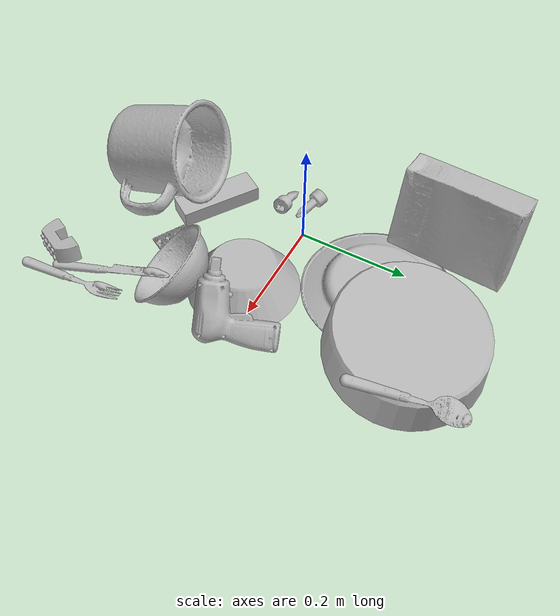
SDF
<sdf version="1.4">
  <world name="default">
    <light name="light1" type="point">
      <pose>0 0 1 0 0 0</pose>
      <diffuse>3 3 3 1</diffuse>
      <specular>3 3 3 1</specular>
    </light>
    <light name="light2" type="point">
      <pose>0 0.5 2 0 0 0</pose>
      <diffuse>1 1 1 1</diffuse>
      <specular>1 1 1 1</specular>
    </light>
    <light name="light3" type="point">
      <pose>0 0.5 2 0 0 0</pose>
      <diffuse>3 3 3 1</diffuse>
      <specular>3 3 3 1</specular>
    </light>
    <scene>
      <ambient>0.7 0.7 0.7</ambient>
    </scene>
    <model name="plate1">
      <link name="link_plate1">
        <collision name="default">
          <geometry>
            <mesh>
              <uri>model://plate/collision_meshes/collision.obj</uri>
              <scale>1.0 1.0 1.0</scale>
            </mesh>
          </geometry>
          <surface>
            <friction>
              <ode>
                <mu>0.5</mu>
                <mu2>0.5</mu2>
              </ode>
            </friction>
          <contact>
        <ode>
            <max_vel>0</max_vel>
            <min_depth>0.0001</min_depth>
            <kp>1e8</kp>
        </ode>
    </contact></surface>
        </collision>
        <visual name="default">
          <geometry>
            <mesh>
              <uri>model://plate/visual_meshes/visual.dae</uri>
              <scale>1.0 1.0 1.0</scale>
            </mesh>
          </geometry>
        </visual>
        <inertial>
          <mass>0.2627958059310913</mass>
          <pose>-0.0006044646725058556 0.00027825895813293755 -0.0010561998933553696 0.0022187866930069794 -0.0032254842153956703 0.4526099982878722</pose>
          <inertia>
            <ixx>0.0012293643</ixx>
            <iyy>0.0012176059</iyy>
            <izz>0.0024044532</izz>
            <ixy>0</ixy>
            <ixz>0</ixz>
            <iyz>0</iyz>
          </inertia>
        </inertial>
      </link>
      <pose>0.05194190517067909 0.16974306106567383 0.01344111654907465 3.1414943299817946 -0.003277990821840223 0.01746045241869001</pose>
    </model>
    <model name="plate2">
      <link name="link_plate2">
        <collision name="default">
          <geometry>
            <mesh>
              <uri>model://pan_tefal/collision_meshes/collision.obj</uri>
              <scale>1.0 1.0 1.0</scale>
            </mesh>
          </geometry>
          <surface>
            <friction>
              <ode>
                <mu>0.5</mu>
                <mu2>0.5</mu2>
              </ode>
            </friction>
          <contact>
        <ode>
            <max_vel>0</max_vel>
            <min_depth>0.0001</min_depth>
            <kp>1e8</kp>
        </ode>
    </contact></surface>
        </collision>
        <visual name="default">
          <geometry>
            <mesh>
              <uri>model://pan_tefal/visual_meshes/visual.dae</uri>
              <scale>1.0 1.0 1.0</scale>
            </mesh>
          </geometry>
        </visual>
        <inertial>
          <mass>1.5012701749801636</mass>
          <pose>-0.00018001999706029892 3.279017983004451e-05 -0.00851493701338768 0.0008190300793188327 -0.0003301349064117064 -0.3318640955526003</pose>
          <inertia>
            <ixx>0.010363197</ixx>
            <iyy>0.010430007</iyy>
            <izz>0.019076647</izz>
            <ixy>0</ixy>
            <ixz>0</ixz>
            <iyz>0</iyz>
          </inertia>
        </inertial>
      </link>
      <pose>0.15766507387161255 0.2634022533893585 0.05294923111796379 -3.116125584074416 -0.11395661100610086 -2.6643025622083782</pose>
    </model>
    <model name="bowl1">
      <link name="link_bowl1">
        <collision name="default">
          <geometry>
            <mesh>
              <uri>model://bowl_a/collision_meshes/collision.obj</uri>
              <scale>1.0 1.0 1.0</scale>
            </mesh>
          </geometry>
          <surface>
            <friction>
              <ode>
                <mu>0.5</mu>
                <mu2>0.5</mu2>
              </ode>
            </friction>
          <contact>
        <ode>
            <max_vel>0</max_vel>
            <min_depth>0.0001</min_depth>
            <kp>1e8</kp>
        </ode>
    </contact></surface>
        </collision>
        <visual name="default">
          <geometry>
            <mesh>
              <uri>model://bowl_a/visual_meshes/visual.dae</uri>
              <scale>1.0 1.0 1.0</scale>
            </mesh>
          </geometry>
        </visual>
        <inertial>
          <mass>0.25230005383491516</mass>
          <pose>0.0002786753175314516 4.731153603643179e-05 -0.001376529224216938 -0.000980537182568925 -0.0010938202432478224 -0.19123453155183487</pose>
          <inertia>
            <ixx>0.00071831</ixx>
            <iyy>0.0007227198</iyy>
            <izz>0.0012775414</izz>
            <ixy>0</ixy>
            <ixz>0</ixz>
            <iyz>0</iyz>
          </inertia>
        </inertial>
      </link>
      <pose>0.15343335270881653 -0.034991003572940826 0.03010198101401329 3.141589008860551 2.0027864509364444e-06 1.8758965366440368</pose>
    </model>
    <model name="bowl2">
      <link name="link_bowl2">
        <collision name="default">
          <geometry>
            <mesh>
              <uri>model://bowl/collision_meshes/collision.obj</uri>
              <scale>1.0 1.0 1.0</scale>
            </mesh>
          </geometry>
          <surface>
            <friction>
              <ode>
                <mu>0.5</mu>
                <mu2>0.5</mu2>
              </ode>
            </friction>
          <contact>
        <ode>
            <max_vel>0</max_vel>
            <min_depth>0.0001</min_depth>
            <kp>1e8</kp>
        </ode>
    </contact></surface>
        </collision>
        <visual name="default">
          <geometry>
            <mesh>
              <uri>model://bowl/visual_meshes/visual.dae</uri>
              <scale>1.0 1.0 1.0</scale>
            </mesh>
          </geometry>
        </visual>
        <inertial>
          <mass>0.09131127595901489</mass>
          <pose>0.00020444947585929185 -0.0010302107548341155 -0.0008042654953896999 -0.01576413996306862 0.014546728377416086 0.7140363947853973</pose>
          <inertia>
            <ixx>0.00020974927</ixx>
            <iyy>0.00020506265</iyy>
            <izz>0.00035287044</izz>
            <ixy>0</ixy>
            <ixz>0</ixz>
            <iyz>0</iyz>
          </inertia>
        </inertial>
      </link>
      <pose>0.21674750745296478 -0.12243104726076126 0.052959173917770386 0.6988356581545703 0.49861551012647 -0.31675935372579883</pose>
    </model>
    <model name="silverware1">
      <link name="link_silverware1">
        <collision name="default">
          <geometry>
            <mesh>
              <uri>model://knife/collision_meshes/collision.obj</uri>
              <scale>1.0 1.0 1.0</scale>
            </mesh>
          </geometry>
          <surface>
            <friction>
              <ode>
                <mu>0.5</mu>
                <mu2>0.5</mu2>
              </ode>
            </friction>
          <contact>
        <ode>
            <max_vel>0</max_vel>
            <min_depth>0.0001</min_depth>
            <kp>1e8</kp>
        </ode>
    </contact></surface>
        </collision>
        <visual name="default">
          <geometry>
            <mesh>
              <uri>model://knife/visual_meshes/visual.dae</uri>
              <scale>1.0 1.0 1.0</scale>
            </mesh>
          </geometry>
        </visual>
        <inertial>
          <mass>0.033491987735033035</mass>
          <pose>-0.023785259574651718 0.00152751209679991 5.062024501967244e-05 0.07305195921562309 0.017248415702697233 -0.007409822782391368</pose>
          <inertia>
            <ixx>9.5063825e-07</ixx>
            <iyy>0.00012867076</iyy>
            <izz>0.00012897696</izz>
            <ixy>0</ixy>
            <ixz>0</ixz>
            <iyz>0</iyz>
          </inertia>
        </inertial>
      </link>
      <pose>0.2439904808998108 -0.24874018132686615 0.01495235227048397 -3.109162902557298 -0.07324805830352916 1.9019411720973027</pose>
    </model>
    <model name="box1">
      <link name="link_box1">
        <collision name="default">
          <geometry>
            <mesh>
              <uri>model://cracker_box/collision_meshes/collision.obj</uri>
              <scale>1.0 1.0 1.0</scale>
            </mesh>
          </geometry>
          <surface>
            <friction>
              <ode>
                <mu>0.5</mu>
                <mu2>0.5</mu2>
              </ode>
            </friction>
          <contact>
        <ode>
            <max_vel>0</max_vel>
            <min_depth>0.0001</min_depth>
            <kp>1e8</kp>
        </ode>
    </contact></surface>
        </collision>
        <visual name="default">
          <geometry>
            <mesh>
              <uri>model://cracker_box/visual_meshes/visual.dae</uri>
              <scale>1.0 1.0 1.0</scale>
            </mesh>
          </geometry>
        </visual>
        <inertial>
          <mass>3.401942253112793</mass>
          <pose>0.0009464150061830878 0.00025434247800149024 -0.001702953246422112 -0.00031620765582640923 -0.011106486806186075 0.0025467954673401043</pose>
          <inertia>
            <ixx>0.008653021</ixx>
            <iyy>0.014287839</iyy>
            <izz>0.020390058</izz>
            <ixy>0</ixy>
            <ixz>0</ixz>
            <iyz>0</iyz>
          </inertia>
        </inertial>
      </link>
      <pose>-0.08450102806091309 0.2517353892326355 0.08585470914840698 1.3632979286641758 0.010370469117919957 1.5197608534154547</pose>
    </model>
    <model name="box2">
      <link name="link_box2">
        <collision name="default">
          <geometry>
            <mesh>
              <uri>model://jenga/collision_meshes/collision.obj</uri>
              <scale>1.0 1.0 1.0</scale>
            </mesh>
          </geometry>
          <surface>
            <friction>
              <ode>
                <mu>0.5</mu>
                <mu2>0.5</mu2>
              </ode>
            </friction>
          <contact>
        <ode>
            <max_vel>0</max_vel>
            <min_depth>0.0001</min_depth>
            <kp>1e8</kp>
        </ode>
    </contact></surface>
        </collision>
        <visual name="default">
          <geometry>
            <mesh>
              <uri>model://jenga/visual_meshes/visual.dae</uri>
              <scale>1.0 1.0 1.0</scale>
            </mesh>
          </geometry>
        </visual>
        <inertial>
          <mass>0.15917322039604187</mass>
          <pose>-2.502856091268768e-07 -0.00010250010382151231 -4.0923405322246253e-05 0.0 -7.34215461761844e-07 0.0</pose>
          <inertia>
            <ixx>4.4047094e-05</ixx>
            <iyy>0.0002984619</iyy>
            <izz>0.00031863348</izz>
            <ixy>0</ixy>
            <ixz>0</ixz>
            <iyz>0</iyz>
          </inertia>
        </inertial>
      </link>
      <pose>0.009730910882353783 -0.17754210531711578 0.01499831024557352 3.141555513834181 3.6692589948695116e-07 2.5684938275013893</pose>
    </model>
    <model name="cup1">
      <link name="link_cup1">
        <collision name="default">
          <geometry>
            <mesh>
              <uri>model://mug/collision_meshes/collision.obj</uri>
              <scale>2.0 2.0 2.0</scale>
            </mesh>
          </geometry>
          <surface>
            <friction>
              <ode>
                <mu>0.5</mu>
                <mu2>0.5</mu2>
              </ode>
            </friction>
          <contact>
        <ode>
            <max_vel>0</max_vel>
            <min_depth>0.0001</min_depth>
            <kp>1e8</kp>
        </ode>
    </contact></surface>
        </collision>
        <visual name="default">
          <geometry>
            <mesh>
              <uri>model://mug/visual_meshes/visual.dae</uri>
              <scale>2.0 2.0 2.0</scale>
            </mesh>
          </geometry>
        </visual>
        <inertial>
          <mass>1.8939067125320435</mass>
          <pose>0.019143342971801758 0.0016286505851894617 -0.02189466543495655 -0.12983139039190478 0.08737723243087561 0.05507286357129759</pose>
          <inertia>
            <ixx>0.0075250226</ixx>
            <iyy>0.008405008</iyy>
            <izz>0.009720505</izz>
            <ixy>0</ixy>
            <ixz>0</ixz>
            <iyz>0</iyz>
          </inertia>
        </inertial>
      </link>
      <pose>0.03653252124786377 -0.27251818776130676 0.0914887860417366 1.2781534276660464 -0.21217911468873135 -2.9937722506690414</pose>
    </model>
    <model name="silverware2">
      <link name="link_silverware2">
        <collision name="default">
          <geometry>
            <mesh>
              <uri>model://fork/collision_meshes/collision.obj</uri>
              <scale>1.0 1.0 1.0</scale>
            </mesh>
          </geometry>
          <surface>
            <friction>
              <ode>
                <mu>0.5</mu>
                <mu2>0.5</mu2>
              </ode>
            </friction>
          <contact>
        <ode>
            <max_vel>0</max_vel>
            <min_depth>0.0001</min_depth>
            <kp>1e8</kp>
        </ode>
    </contact></surface>
        </collision>
        <visual name="default">
          <geometry>
            <mesh>
              <uri>model://fork/visual_meshes/visual.dae</uri>
              <scale>1.0 1.0 1.0</scale>
            </mesh>
          </geometry>
        </visual>
        <inertial>
          <mass>0.01107261423021555</mass>
          <pose>-0.02957005240023136 0.00046588238910771906 0.0003218861820641905 -0.01355183639158028 -0.010977839693189282 0.014453902572364752</pose>
          <inertia>
            <ixx>3.8815773e-07</ixx>
            <iyy>2.8907412e-05</iyy>
            <izz>2.9081024e-05</izz>
            <ixy>0</ixy>
            <ixz>0</ixz>
            <iyz>0</iyz>
          </inertia>
        </inertial>
      </link>
      <pose>0.28981006145477295 -0.30191275477409363 0.005815925542265177 0.08004097193227598 0.03236549055392682 1.67330818944222</pose>
    </model>
    <model name="silverware3">
      <link name="link_silverware3">
        <collision name="default">
          <geometry>
            <mesh>
              <uri>model://spoon/collision_meshes/collision.obj</uri>
              <scale>1.0 1.0 1.0</scale>
            </mesh>
          </geometry>
          <surface>
            <friction>
              <ode>
                <mu>0.5</mu>
                <mu2>0.5</mu2>
              </ode>
            </friction>
          <contact>
        <ode>
            <max_vel>0</max_vel>
            <min_depth>0.0001</min_depth>
            <kp>1e8</kp>
        </ode>
    </contact></surface>
        </collision>
        <visual name="default">
          <geometry>
            <mesh>
              <uri>model://spoon/visual_meshes/visual.dae</uri>
              <scale>1.0 1.0 1.0</scale>
            </mesh>
          </geometry>
        </visual>
        <inertial>
          <mass>0.03720218688249588</mass>
          <pose>-0.005526323337107897 -0.00160341733135283 -0.0007271655485965312 0.035216710753312216 -0.03906584126265578 0.006150608185168733</pose>
          <inertia>
            <ixx>2.0692462e-06</ixx>
            <iyy>0.00014155307</iyy>
            <izz>0.00014257352</izz>
            <ixy>0</ixy>
            <ixz>0</ixz>
            <iyz>0</iyz>
          </inertia>
        </inertial>
      </link>
      <pose>0.27081096172332764 0.3049529492855072 0.08034127950668335 -2.9732980327619307 0.06874838872673511 1.7982461268161263</pose>
    </model>
    <model name="toy1">
      <link name="link_toy1">
        <collision name="default">
          <geometry>
            <mesh>
              <uri>model://e_toy_airplane/collision_meshes/collision.obj</uri>
              <scale>1.0 1.0 1.0</scale>
            </mesh>
          </geometry>
          <surface>
            <friction>
              <ode>
                <mu>0.5</mu>
                <mu2>0.5</mu2>
              </ode>
            </friction>
          <contact>
        <ode>
            <max_vel>0</max_vel>
            <min_depth>0.0001</min_depth>
            <kp>1e8</kp>
        </ode>
    </contact></surface>
        </collision>
        <visual name="default">
          <geometry>
            <mesh>
              <uri>model://e_toy_airplane/visual_meshes/visual.dae</uri>
              <scale>1.0 1.0 1.0</scale>
            </mesh>
          </geometry>
        </visual>
        <inertial>
          <mass>0.02491888962686062</mass>
          <pose>0.00011740486661437899 -2.248287455586251e-05 -0.011187204159796238 0.00551850201937057 0.009228289896812953 0.1504152046419029</pose>
          <inertia>
            <ixx>7.60553e-06</ixx>
            <iyy>7.52773e-06</iyy>
            <izz>2.2857607e-06</izz>
            <ixy>0</ixy>
            <ixz>0</ixz>
            <iyz>0</iyz>
          </inertia>
        </inertial>
      </link>
      <pose>-0.05925826355814934 -0.06143331527709961 0.01080871932208538 -2.145174705363731 1.102821217138752 1.049644503046517</pose>
    </model>
    <model name="toy2">
      <link name="link_toy2">
        <collision name="default">
          <geometry>
            <mesh>
              <uri>model://e_lego_duplo/collision_meshes/collision.obj</uri>
              <scale>1.0 1.0 1.0</scale>
            </mesh>
          </geometry>
          <surface>
            <friction>
              <ode>
                <mu>0.5</mu>
                <mu2>0.5</mu2>
              </ode>
            </friction>
          <contact>
        <ode>
            <max_vel>0</max_vel>
            <min_depth>0.0001</min_depth>
            <kp>1e8</kp>
        </ode>
    </contact></surface>
        </collision>
        <visual name="default">
          <geometry>
            <mesh>
              <uri>model://e_lego_duplo/visual_meshes/visual.dae</uri>
              <scale>1.0 1.0 1.0</scale>
            </mesh>
          </geometry>
        </visual>
        <inertial>
          <mass>0.08635181933641434</mass>
          <pose>0.00032560451654717326 0.0002348542184336111 0.0019521444337442517 -0.022567902749969417 -6.824781923482006e-05 -0.00762515629770681</pose>
          <inertia>
            <ixx>1.8007207e-05</ixx>
            <iyy>7.390619e-05</iyy>
            <izz>7.1969785e-05</izz>
            <ixy>0</ixy>
            <ixz>0</ixz>
            <iyz>0</iyz>
          </inertia>
        </inertial>
      </link>
      <pose>0.2470436692237854 -0.3585488200187683 0.02515402063727379 -1.5275031426041443 0.17652621639123037 -2.0509265537261965</pose>
    </model>
    <model name="toy3">
      <link name="link_toy3">
        <collision name="default">
          <geometry>
            <mesh>
              <uri>model://d_toy_airplane/collision_meshes/collision.obj</uri>
              <scale>1.0 1.0 1.0</scale>
            </mesh>
          </geometry>
          <surface>
            <friction>
              <ode>
                <mu>0.5</mu>
                <mu2>0.5</mu2>
              </ode>
            </friction>
          <contact>
        <ode>
            <max_vel>0</max_vel>
            <min_depth>0.0001</min_depth>
            <kp>1e8</kp>
        </ode>
    </contact></surface>
        </collision>
        <visual name="default">
          <geometry>
            <mesh>
              <uri>model://d_toy_airplane/visual_meshes/visual.dae</uri>
              <scale>1.0 1.0 1.0</scale>
            </mesh>
          </geometry>
        </visual>
        <inertial>
          <mass>0.01398532185703516</mass>
          <pose>9.410311031388119e-05 -5.809316644445062e-05 -0.011728093959391117 0.00026700916858413164 0.004678987951971881 0.5194708538811167</pose>
          <inertia>
            <ixx>4.1925277e-06</ixx>
            <iyy>4.1956896e-06</iyy>
            <izz>1.2657512e-06</izz>
            <ixy>0</ixy>
            <ixz>0</ixz>
            <iyz>0</iyz>
          </inertia>
        </inertial>
      </link>
      <pose>-0.061297327280044556 -0.0183505080640316 0.01183481328189373 1.9162746816488363 0.9460537901951166 1.5249665554265381</pose>
    </model>
    <model name="toy4">
      <link name="link_toy4">
        <collision name="default">
          <geometry>
            <mesh>
              <uri>model://b_toy_airplane/collision_meshes/collision.obj</uri>
              <scale>1.0 1.0 1.0</scale>
            </mesh>
          </geometry>
          <surface>
            <friction>
              <ode>
                <mu>0.5</mu>
                <mu2>0.5</mu2>
              </ode>
            </friction>
          <contact>
        <ode>
            <max_vel>0</max_vel>
            <min_depth>0.0001</min_depth>
            <kp>1e8</kp>
        </ode>
    </contact></surface>
        </collision>
        <visual name="default">
          <geometry>
            <mesh>
              <uri>model://b_toy_airplane/visual_meshes/visual.dae</uri>
              <scale>1.0 1.0 1.0</scale>
            </mesh>
          </geometry>
        </visual>
        <inertial>
          <mass>0.39888885617256165</mass>
          <pose>0.00508136348798871 0.0040155863389372826 0.009543065913021564 -0.04001810285123905 -0.040221831504284974 -0.560150355465512</pose>
          <inertia>
            <ixx>0.00074054446</ixx>
            <iyy>0.00029600295</iyy>
            <izz>0.00092131115</izz>
            <ixy>0</ixy>
            <ixz>0</ixz>
            <iyz>0</iyz>
          </inertia>
        </inertial>
      </link>
      <pose>0.2452607899904251 -0.010392967611551285 0.0334690660238266 0.09794460001966195 -0.8440737661764413 -2.8241023542594976</pose>
    </model>
    <model name="toy5">
      <link name="link_toy5">
        <collision name="default">
          <geometry>
            <mesh>
              <uri>model://a_lego_duplo/collision_meshes/collision.obj</uri>
              <scale>1.0 1.0 1.0</scale>
            </mesh>
          </geometry>
          <surface>
            <friction>
              <ode>
                <mu>0.5</mu>
                <mu2>0.5</mu2>
              </ode>
            </friction>
          <contact>
        <ode>
            <max_vel>0</max_vel>
            <min_depth>0.0001</min_depth>
            <kp>1e8</kp>
        </ode>
    </contact></surface>
        </collision>
        <visual name="default">
          <geometry>
            <mesh>
              <uri>model://a_lego_duplo/visual_meshes/visual.dae</uri>
              <scale>1.0 1.0 1.0</scale>
            </mesh>
          </geometry>
        </visual>
        <inertial>
          <mass>0.014756478369235992</mass>
          <pose>-0.00011337623436702415 0.00018517495482228696 0.00036926049506291747 -0.01411700810413075 -0.00012565743579302476 6.142605902116464e-05</pose>
          <inertia>
            <ixx>1.8918981e-06</ixx>
            <iyy>4.238266e-06</iyy>
            <izz>5.250033e-06</izz>
            <ixy>0</ixy>
            <ixz>0</ixz>
            <iyz>0</iyz>
          </inertia>
        </inertial>
      </link>
      <pose>0.1364251673221588 -0.1915864199399948 0.012124801054596901 -3.1412818860787333 -0.015583437016497436 -0.4895396175888921</pose>
    </model>
  <physics type="ode">
      <max_contacts>50</max_contacts>
      <ode>
        <solver>
          <type>quick</type>
          <iters>75</iters>
        </solver>
        <constraints>
          <contact_max_correcting_vel>0</contact_max_correcting_vel>
          <contact_surface_layer>0</contact_surface_layer>
        </constraints>
      </ode>
    </physics></world>
</sdf>
